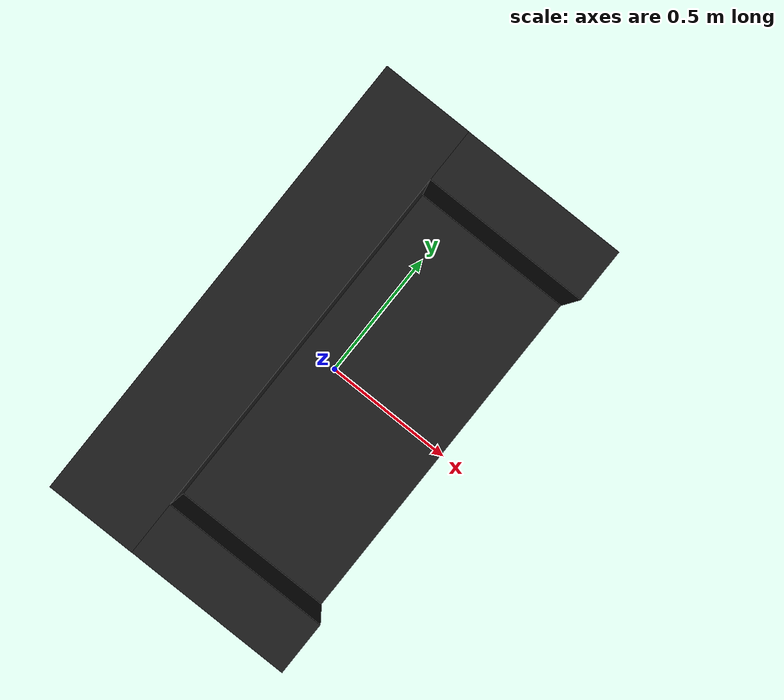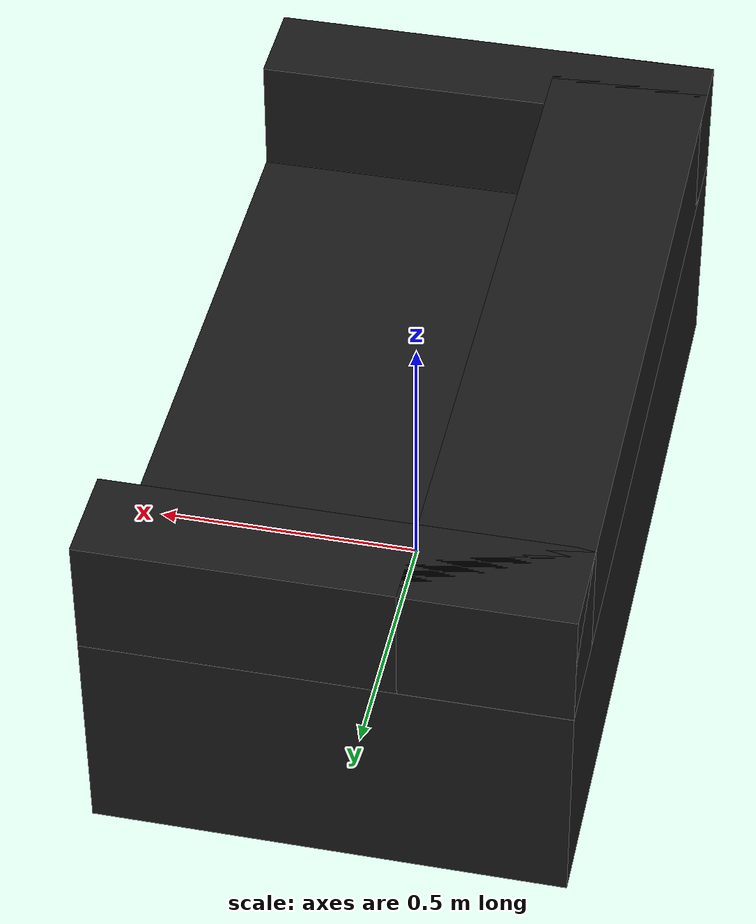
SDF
<?xml version="1.0"?>
<sdf version="1.6">
  <model name="rwc2016/couch">
    <link name="1_link">
      <collision name="1_col">
        <geometry>
          <box>
            <size>0.85 1.54 0.42</size>
          </box>
        </geometry>
      </collision>
      <visual name="1_vis">
        <geometry>
          <box>
            <size>0.85 1.54 0.42</size>
          </box>
        </geometry>
        <material>
          <ambient>0.1 0.1 0.1 1</ambient>
        </material>
      </visual>
      <pose>0.0 0.0 0.21 0 0 0</pose>
    </link>
    <link name="2_link">
      <collision name="2_col">
        <geometry>
          <box>
            <size>0.3 1.54 0.225</size>
          </box>
        </geometry>
      </collision>
      <visual name="2_vis">
        <geometry>
          <box>
            <size>0.3 1.54 0.225</size>
          </box>
        </geometry>
        <material>
          <ambient>0.1 0.1 0.1 1</ambient>
        </material>
      </visual>
      <pose>-0.275 0.0 0.5325 0 0 0</pose>
    </link>
    <link name="3_link">
      <collision name="3_col">
        <geometry>
          <box>
            <size>0.85 0.175 0.225</size>
          </box>
        </geometry>
      </collision>
      <visual name="3_vis">
        <geometry>
          <box>
            <size>0.85 0.175 0.225</size>
          </box>
        </geometry>
        <material>
          <ambient>0.1 0.1 0.1 1</ambient>
        </material>
      </visual>
      <pose>0.0 -0.682 0.5325 0 0 0</pose>
    </link>
    <link name="4_link">
      <collision name="4_col">
        <geometry>
          <box>
            <size>0.85 0.175 0.225</size>
          </box>
        </geometry>
      </collision>
      <visual name="4_vis">
        <geometry>
          <box>
            <size>0.85 0.175 0.225</size>
          </box>
        </geometry>
        <material>
          <ambient>0.1 0.1 0.1 1</ambient>
        </material>
      </visual>
      <pose>0.0 0.682 0.5325 0 0 0</pose>
    </link>
    <link name="on_top_of">
      <virtual_volume name="on_top_of_vv">
        <geometry>
          <box>
            <size>0.35 1.1 0.32</size>
          </box>
        </geometry>
        <pose>0.175 0.0 0.6 0 0 0</pose>
      </virtual_volume>
    </link>
    <link name="in_front_of">
      <virtual_volume name="in_front_of_vv">
        <geometry>
          <box>
            <size>0.2 0.6 0.01</size>
          </box>
        </geometry>
        <pose>1.05 0.0 0.005 0 0 0</pose>
      </virtual_volume>
    </link>
    <static>true</static>
  </model>
</sdf>
